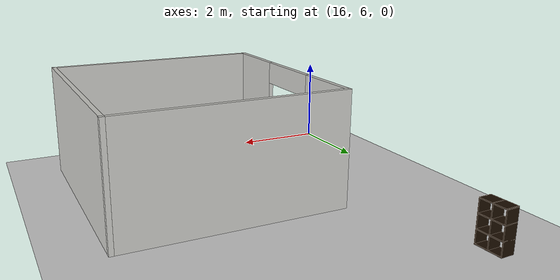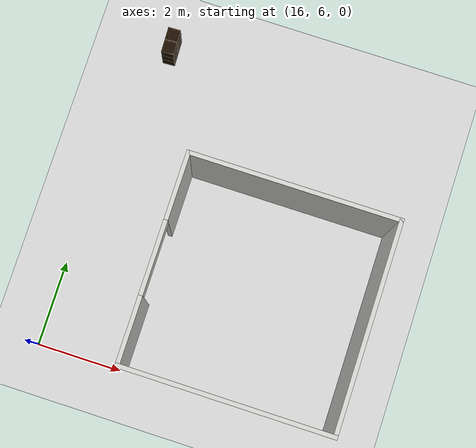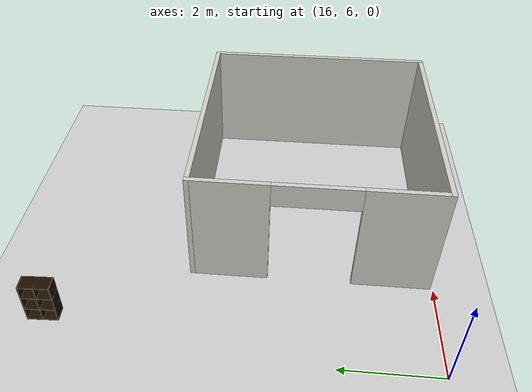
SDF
<sdf version="1.6">
 <world name="default">
  <model name="ground_plane">
   <static>1</static>
   <link name="link">
    <collision name="collision">
     <geometry><plane><normal>0 0 1</normal><size>100 100</size></plane></geometry>
     <surface><friction><ode><mu>100</mu><mu2>50</mu2></ode></friction></surface>
    </collision>
    <visual name="visual">
     <cast_shadows>0</cast_shadows>
     <geometry><plane><normal>0 0 1</normal><size>100 100</size></plane></geometry>
     <material>
      <script><uri>file://media/materials/scripts/gazebo.material</uri><name>Gazebo/Grey</name></script>
     </material>
    </visual>
   </link>
  </model>
  <model name="6_Cube_StorageE_0">
   <link name="Wall_0">
    <pose>0 0 0.01 0 -0 0</pose>
    <inertial>
     <mass>1.6201</mass>
     <inertia><ixx>0.0119</ixx><iyy>0.0631</iyy><izz>0.0513</izz><ixy>0</ixy><ixz>0</ixz><iyz>0</iyz></inertia>
    </inertial>
    <collision name="Wall_0_Collision"><geometry><box><size>0.616 0.296 0.02</size></box></geometry></collision>
    <visual name="Wall_0_Visual">
     <geometry><box><size>0.616 0.296 0.02</size></box></geometry>
     <material>
      <script><uri>file://media/materials/scripts/gazebo.material</uri><name>Gazebo/Grey</name></script>
      <ambient>0.105882 0.0509804 0 1</ambient>
     </material>
    </visual>
   </link>
   <joint name="0_2" type="fixed">
    <pose>-0.308 0 0 0 -0 0</pose>
    <parent>Wall_2</parent>
    <child>Wall_0</child>
    <axis>
     <xyz>1 0 0</xyz>
     <use_parent_model_frame>0</use_parent_model_frame>
     <limit><lower>-1e+16</lower><upper>1e+16</upper></limit>
    </axis>
   </joint>
   <joint name="0_12" type="fixed">
    <parent>Wall_12</parent>
    <child>Wall_0</child>
    <axis>
     <xyz>0 0 1</xyz>
     <use_parent_model_frame>0</use_parent_model_frame>
     <limit><lower>-1e+16</lower><upper>1e+16</upper></limit>
    </axis>
   </joint>
   <joint name="0_4" type="fixed">
    <pose>0.308 0 0 0 -0 0</pose>
    <parent>Wall_4</parent>
    <child>Wall_0</child>
    <axis>
     <xyz>1 0 0</xyz>
     <use_parent_model_frame>0</use_parent_model_frame>
     <limit><lower>-1e+16</lower><upper>1e+16</upper></limit>
    </axis>
   </joint>
   <link name="Wall_10">
    <pose>0 0 0.61 0 -0 0</pose>
    <inertial>
     <mass>1.6201</mass>
     <inertia><ixx>0.0119</ixx><iyy>0.0631</iyy><izz>0.0513</izz><ixy>0</ixy><ixz>0</ixz><iyz>0</iyz></inertia>
    </inertial>
    <collision name="Wall_10_Collision"><geometry><box><size>0.616 0.296 0.02</size></box></geometry></collision>
    <visual name="Wall_10_Visual">
     <geometry><box><size>0.616 0.296 0.02</size></box></geometry>
     <material>
      <script><uri>file://media/materials/scripts/gazebo.material</uri><name>Gazebo/Grey</name></script>
      <ambient>0.105882 0.0509804 0 1</ambient>
     </material>
    </visual>
   </link>
   <joint name="10_2" type="fixed">
    <pose>-0.308 0 0 0 -0 0</pose>
    <parent>Wall_2</parent>
    <child>Wall_10</child>
    <axis>
     <xyz>1 0 0</xyz>
     <use_parent_model_frame>0</use_parent_model_frame>
     <limit><lower>-1e+16</lower><upper>1e+16</upper></limit>
    </axis>
   </joint>
   <joint name="10_12" type="fixed">
    <parent>Wall_12</parent>
    <child>Wall_10</child>
    <axis>
     <xyz>0 0 1</xyz>
     <use_parent_model_frame>0</use_parent_model_frame>
     <limit><lower>-1e+16</lower><upper>1e+16</upper></limit>
    </axis>
   </joint>
   <joint name="10_4" type="fixed">
    <pose>0.308 0 0 0 -0 0</pose>
    <parent>Wall_4</parent>
    <child>Wall_10</child>
    <axis>
     <xyz>1 0 0</xyz>
     <use_parent_model_frame>0</use_parent_model_frame>
     <limit><lower>-1e+16</lower><upper>1e+16</upper></limit>
    </axis>
   </joint>
   <link name="Wall_12">
    <pose>0 0 0.4575 0 -0 0</pose>
    <inertial>
     <mass>2.4065</mass>
     <inertia><ixx>0.0177</ixx><iyy>0.1855</iyy><izz>0.168</izz><ixy>0</ixy><ixz>0</ixz><iyz>0</iyz></inertia>
    </inertial>
    <collision name="Wall_12_Collision"><geometry><box><size>0.02 0.296 0.915</size></box></geometry></collision>
    <visual name="Wall_12_Visual">
     <geometry><box><size>0.02 0.296 0.915</size></box></geometry>
     <material>
      <script><uri>file://media/materials/scripts/gazebo.material</uri><name>Gazebo/Grey</name></script>
      <ambient>0.105882 0.0509804 0 1</ambient>
     </material>
    </visual>
   </link>
   <link name="Wall_2">
    <pose>-0.298 0 0.4575 0 -0 0</pose>
    <inertial>
     <mass>2.4065</mass>
     <inertia><ixx>0.0177</ixx><iyy>0.1855</iyy><izz>0.168</izz><ixy>0</ixy><ixz>0</ixz><iyz>0</iyz></inertia>
    </inertial>
    <collision name="Wall_2_Collision"><geometry><box><size>0.02 0.296 0.915</size></box></geometry></collision>
    <visual name="Wall_2_Visual">
     <geometry><box><size>0.02 0.296 0.915</size></box></geometry>
     <material>
      <script><uri>file://media/materials/scripts/gazebo.material</uri><name>Gazebo/Grey</name></script>
      <ambient>0.105882 0.0509804 0 1</ambient>
     </material>
    </visual>
   </link>
   <link name="Wall_4">
    <pose>0.298 0 0.4575 0 -0 0</pose>
    <inertial>
     <mass>2.4065</mass>
     <inertia><ixx>0.0177</ixx><iyy>0.1855</iyy><izz>0.168</izz><ixy>0</ixy><ixz>0</ixz><iyz>0</iyz></inertia>
    </inertial>
    <collision name="Wall_4_Collision"><geometry><box><size>0.02 0.296 0.915</size></box></geometry></collision>
    <visual name="Wall_4_Visual">
     <geometry><box><size>0.02 0.296 0.915</size></box></geometry>
     <material>
      <script><uri>file://media/materials/scripts/gazebo.material</uri><name>Gazebo/Grey</name></script>
      <ambient>0.105882 0.0509804 0 1</ambient>
     </material>
    </visual>
   </link>
   <link name="Wall_6">
    <pose>0 0 0.905 0 -0 0</pose>
    <inertial>
     <mass>1.6201</mass>
     <inertia><ixx>0.0119</ixx><iyy>0.0631</iyy><izz>0.0513</izz><ixy>0</ixy><ixz>0</ixz><iyz>0</iyz></inertia>
    </inertial>
    <collision name="Wall_6_Collision"><geometry><box><size>0.616 0.296 0.02</size></box></geometry></collision>
    <visual name="Wall_6_Visual">
     <geometry><box><size>0.616 0.296 0.02</size></box></geometry>
     <material>
      <script><uri>file://media/materials/scripts/gazebo.material</uri><name>Gazebo/Grey</name></script>
      <ambient>0.105882 0.0509804 0 1</ambient>
     </material>
    </visual>
   </link>
   <joint name="6_2" type="fixed">
    <pose>-0.308 0 0 0 -0 0</pose>
    <parent>Wall_2</parent>
    <child>Wall_6</child>
    <axis>
     <xyz>2 0 0</xyz>
     <use_parent_model_frame>0</use_parent_model_frame>
     <limit><lower>-1e+16</lower><upper>1e+16</upper></limit>
    </axis>
   </joint>
   <joint name="6_12" type="fixed">
    <parent>Wall_12</parent>
    <child>Wall_6</child>
    <axis>
     <xyz>0 0 1</xyz>
     <use_parent_model_frame>0</use_parent_model_frame>
     <limit><lower>-1e+16</lower><upper>1e+16</upper></limit>
    </axis>
   </joint>
   <joint name="6_4" type="fixed">
    <pose>0.308 0 0 0 -0 0</pose>
    <parent>Wall_4</parent>
    <child>Wall_6</child>
    <axis>
     <xyz>1 0 0</xyz>
     <use_parent_model_frame>0</use_parent_model_frame>
     <limit><lower>-1e+16</lower><upper>1e+16</upper></limit>
    </axis>
   </joint>
   <link name="Wall_8">
    <pose>0 0 0.305 0 -0 0</pose>
    <inertial>
     <mass>1.6201</mass>
     <inertia><ixx>0.0119</ixx><iyy>0.0631</iyy><izz>0.0513</izz><ixy>0</ixy><ixz>0</ixz><iyz>0</iyz></inertia>
    </inertial>
    <collision name="Wall_8_Collision"><geometry><box><size>0.616 0.296 0.02</size></box></geometry></collision>
    <visual name="Wall_8_Visual">
     <geometry><box><size>0.616 0.296 0.02</size></box></geometry>
     <material>
      <script><uri>file://media/materials/scripts/gazebo.material</uri><name>Gazebo/Grey</name></script>
      <ambient>0.105882 0.0509804 0 1</ambient>
     </material>
    </visual>
   </link>
   <joint name="8_2" type="fixed">
    <pose>-0.308 0 0 0 -0 0</pose>
    <parent>Wall_2</parent>
    <child>Wall_8</child>
    <axis>
     <xyz>1 0 0</xyz>
     <use_parent_model_frame>0</use_parent_model_frame>
     <limit><lower>-1e+16</lower><upper>1e+16</upper></limit>
    </axis>
   </joint>
   <joint name="8_12" type="fixed">
    <parent>Wall_12</parent>
    <child>Wall_8</child>
    <axis>
     <xyz>0 0 1</xyz>
     <use_parent_model_frame>0</use_parent_model_frame>
     <limit><lower>-1e+16</lower><upper>1e+16</upper></limit>
    </axis>
   </joint>
   <joint name="8_4" type="fixed">
    <pose>0.308 0 0 0 -0 0</pose>
    <parent>Wall_4</parent>
    <child>Wall_8</child>
    <axis>
     <xyz>1 0 0</xyz>
     <use_parent_model_frame>0</use_parent_model_frame>
     <limit><lower>-1e+16</lower><upper>1e+16</upper></limit>
    </axis>
   </joint>
   <static>1</static>
   <pose>16.7429 13.6009 0 0 -0 1.61082</pose>
  </model>
  <model name="room_wall_5">
   <pose>20.5 8.5 0 0 -0 3.14159</pose>
   <link name="Wall_21">
    <collision name="Wall_21_Collision">
     <geometry><box><size>4.9 0.1 2.5</size></box></geometry>
     <pose>0 0 1.25 0 -0 0</pose>
    </collision>
    <visual name="Wall_21_Visual">
     <pose>0 0 1.25 0 -0 0</pose>
     <geometry><box><size>4.9 0.1 2.5</size></box></geometry>
     <material>
      <script><uri>file://media/materials/scripts/gazebo.material</uri><name>Gazebo/CeilingTiled</name></script>
      <ambient>1 0.764706 0.305882 1</ambient>
     </material>
     <meta><layer>0</layer></meta>
    </visual>
    <pose>0 2.4 0 0 -0 0</pose>
   </link>
   <link name="Wall_22">
    <pose>2.4 0 0 0 0 -1.5708</pose>
    <visual name="Wall_22_Visual_0">
     <pose>-1.64961 0 1.25 0 -0 0</pose>
     <geometry><box><size>1.60079 0.1 2.5</size></box></geometry>
     <material>
      <script><uri>file://media/materials/scripts/gazebo.material</uri><name>Gazebo/CeilingTiled</name></script>
      <ambient>1 0.764706 0.305882 1</ambient>
     </material>
     <meta><layer>0</layer></meta>
    </visual>
    <collision name="Wall_22_Collision_0">
     <geometry><box><size>1.60079 0.1 2.5</size></box></geometry>
     <pose>-1.64961 0 1.25 0 -0 0</pose>
    </collision>
    <visual name="Wall_22_Visual_1">
     <pose>1.65039 0 1.25 0 -0 0</pose>
     <geometry><box><size>1.59921 0.1 2.5</size></box></geometry>
     <material>
      <script><uri>file://media/materials/scripts/gazebo.material</uri><name>Gazebo/CeilingTiled</name></script>
      <ambient>1 0.764706 0.305882 1</ambient>
     </material>
     <meta><layer>0</layer></meta>
    </visual>
    <collision name="Wall_22_Collision_1">
     <geometry><box><size>1.59921 0.1 2.5</size></box></geometry>
     <pose>1.65039 0 1.25 0 -0 0</pose>
    </collision>
    <visual name="Wall_22_Visual_2">
     <pose>0.000786 0 2.25 0 -0 0</pose>
     <geometry><box><size>1.7 0.1 0.5</size></box></geometry>
     <material>
      <script><uri>file://media/materials/scripts/gazebo.material</uri><name>Gazebo/CeilingTiled</name></script>
      <ambient>1 0.764706 0.305882 1</ambient>
     </material>
     <meta><layer>0</layer></meta>
    </visual>
    <collision name="Wall_22_Collision_2">
     <geometry><box><size>1.7 0.1 0.5</size></box></geometry>
     <pose>0.000786 0 2.25 0 -0 0</pose>
    </collision>
   </link>
   <link name="Wall_23">
    <collision name="Wall_23_Collision">
     <geometry><box><size>4.9 0.1 2.5</size></box></geometry>
     <pose>0 0 1.25 0 -0 0</pose>
    </collision>
    <visual name="Wall_23_Visual">
     <pose>0 0 1.25 0 -0 0</pose>
     <geometry><box><size>4.9 0.1 2.5</size></box></geometry>
     <material>
      <script><uri>file://media/materials/scripts/gazebo.material</uri><name>Gazebo/CeilingTiled</name></script>
      <ambient>1 0.764706 0.305882 1</ambient>
     </material>
     <meta><layer>0</layer></meta>
    </visual>
    <pose>0 -2.4 0 0 -0 3.14159</pose>
   </link>
   <link name="Wall_24">
    <collision name="Wall_24_Collision">
     <geometry><box><size>4.9 0.1 2.5</size></box></geometry>
     <pose>0 0 1.25 0 -0 0</pose>
    </collision>
    <visual name="Wall_24_Visual">
     <pose>0 0 1.25 0 -0 0</pose>
     <geometry><box><size>4.9 0.1 2.5</size></box></geometry>
     <material>
      <script><uri>file://media/materials/scripts/gazebo.material</uri><name>Gazebo/CeilingTiled</name></script>
      <ambient>1 0.764706 0.305882 1</ambient>
     </material>
     <meta><layer>0</layer></meta>
    </visual>
    <pose>-2.4 0 0 0 -0 1.5708</pose>
   </link>
   <static>1</static>
  </model>
 </world>
</sdf>
